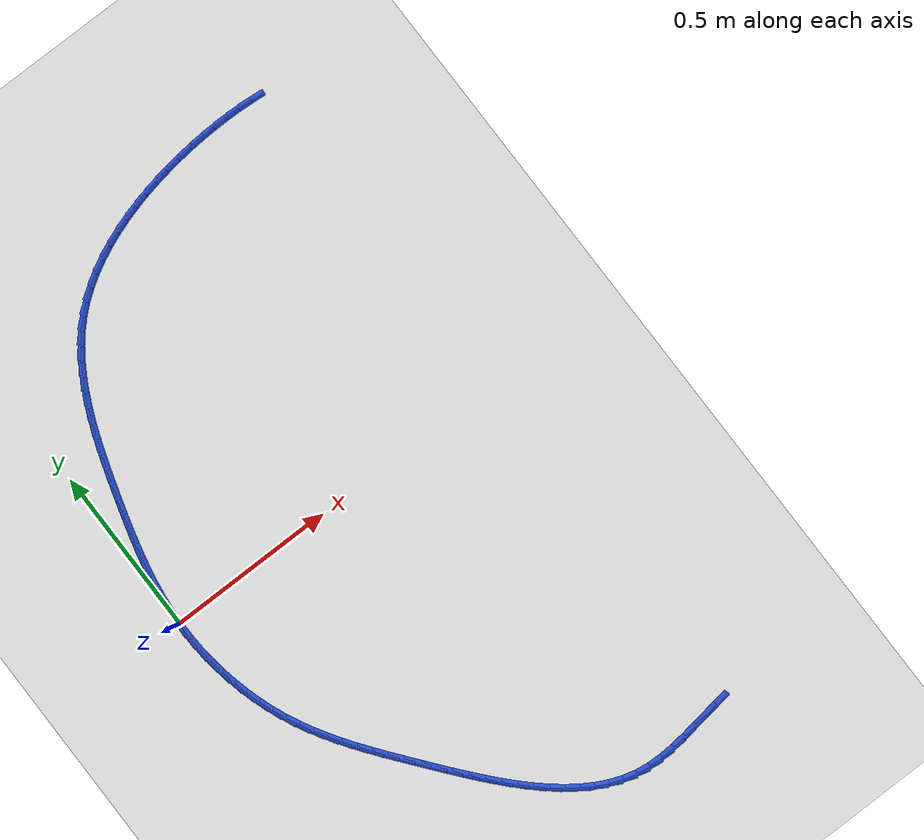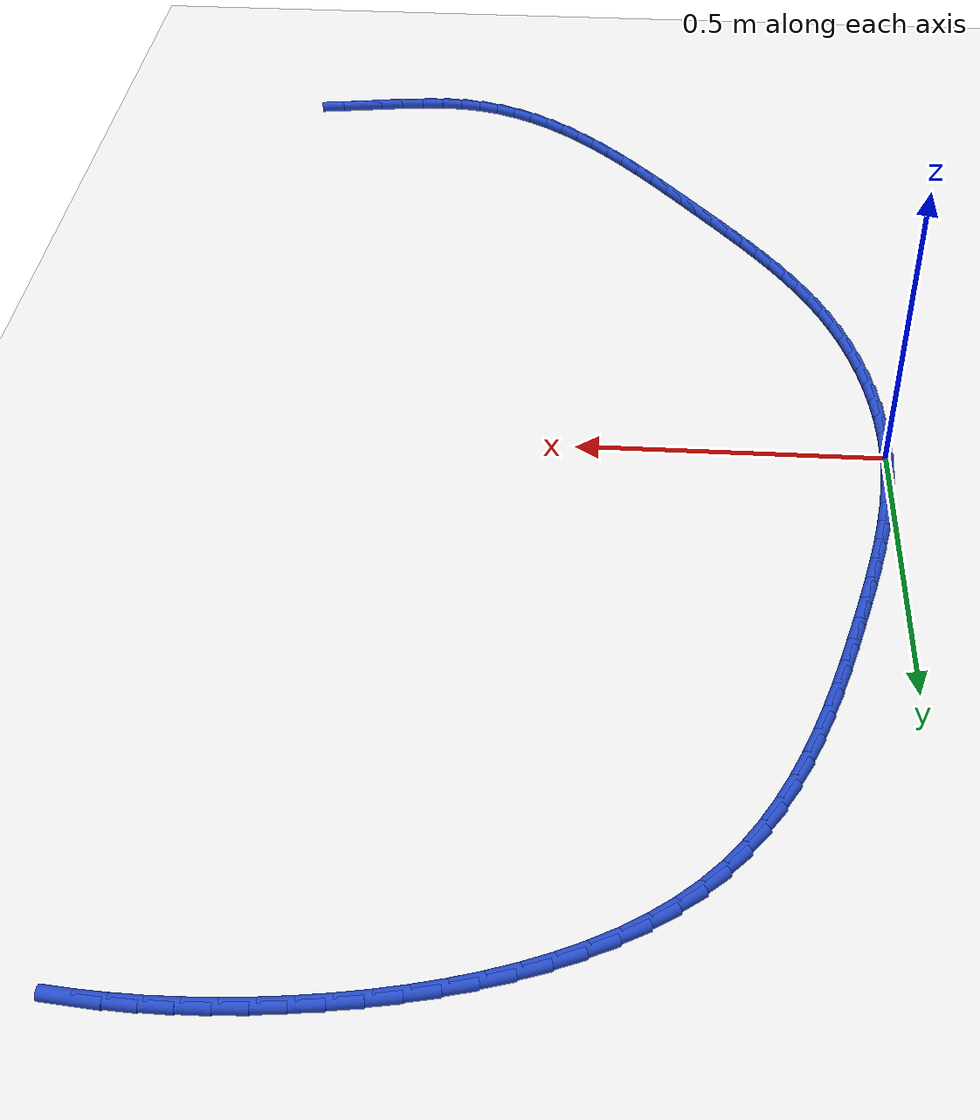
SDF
<sdf version="1.6">
 <world name="default">
  <model name="ground_plane">
   <static>1</static>
   <link name="link">
    <collision name="collision">
     <geometry><plane><normal>0 0 1</normal><size>100 100</size></plane></geometry>
     <surface><friction><ode><mu>100</mu><mu2>50</mu2></ode></friction></surface>
    </collision>
    <visual name="visual">
     <cast_shadows>0</cast_shadows>
     <geometry><plane><normal>0 0 1</normal><size>100 100</size></plane></geometry>
     <material>
      <script><uri>file://media/materials/scripts/gazebo.material</uri><name>Gazebo/WhiteGlow</name></script>
     </material>
    </visual>
   </link>
  </model>
  <model name="line">
   <link name="link_0">
    <pose>1.734723475976807e-18 -6.938893903907228e-17 0.01 0 1.57 1.5186807041762862</pose>
    <collision name="collision">
     <geometry><cylinder><radius>0.01</radius><length>0.08</length></cylinder></geometry>
    </collision>
    <visual name="visual">
     <material>
      <script><name>Gazebo/Blue</name><uri>file://media/materials/scripts/gazebo.material</uri></script>
     </material>
     <geometry><cylinder><radius>0.01</radius><length>0.08</length></cylinder></geometry>
    </visual>
   </link>
   <link name="link_1">
    <pose>0.0022255702728750694 0.042665805088439646 0.01 0 1.57 1.4713120042472065</pose>
    <collision name="collision">
     <geometry><cylinder><radius>0.01</radius><length>0.08</length></cylinder></geometry>
    </collision>
    <visual name="visual">
     <material>
      <script><name>Gazebo/Blue</name><uri>file://media/materials/scripts/gazebo.material</uri></script>
     </material>
     <geometry><cylinder><radius>0.01</radius><length>0.08</length></cylinder></geometry>
    </visual>
   </link>
   <link name="link_2">
    <pose>0.0064519726637163625 0.08500865860821659 0.01 0 1.57 1.428681906047522</pose>
    <collision name="collision">
     <geometry><cylinder><radius>0.01</radius><length>0.08</length></cylinder></geometry>
    </collision>
    <visual name="visual">
     <material>
      <script><name>Gazebo/Blue</name><uri>file://media/materials/scripts/gazebo.material</uri></script>
     </material>
     <geometry><cylinder><radius>0.01</radius><length>0.08</length></cylinder></geometry>
    </visual>
   </link>
   <link name="link_3">
    <pose>0.012474710428388141 0.12710246544149936 0.01 0 1.57 1.3911044565387365</pose>
    <collision name="collision">
     <geometry><cylinder><radius>0.01</radius><length>0.08</length></cylinder></geometry>
    </collision>
    <visual name="visual">
     <material>
      <script><name>Gazebo/Blue</name><uri>file://media/materials/scripts/gazebo.material</uri></script>
     </material>
     <geometry><cylinder><radius>0.01</radius><length>0.08</length></cylinder></geometry>
    </visual>
   </link>
   <link name="link_4">
    <pose>0.02008928682275461 0.16902113047045642 0.01 0 1.57 1.3587648407987145</pose>
    <collision name="collision">
     <geometry><cylinder><radius>0.01</radius><length>0.08</length></cylinder></geometry>
    </collision>
    <visual name="visual">
     <material>
      <script><name>Gazebo/Blue</name><uri>file://media/materials/scripts/gazebo.material</uri></script>
     </material>
     <geometry><cylinder><radius>0.01</radius><length>0.08</length></cylinder></geometry>
    </visual>
   </link>
   <link name="link_5">
    <pose>0.029091205102680016 0.2108385585772562 0.01 0 1.57 1.3317441301647523</pose>
    <collision name="collision">
     <geometry><cylinder><radius>0.01</radius><length>0.08</length></cylinder></geometry>
    </collision>
    <visual name="visual">
     <material>
      <script><name>Gazebo/Blue</name><uri>file://media/materials/scripts/gazebo.material</uri></script>
     </material>
     <geometry><cylinder><radius>0.01</radius><length>0.08</length></cylinder></geometry>
    </visual>
   </link>
   <link name="link_6">
    <pose>0.03927596852402861 0.2526286546440673 0.01 0 1.57 1.3100451679042042</pose>
    <collision name="collision">
     <geometry><cylinder><radius>0.01</radius><length>0.08</length></cylinder></geometry>
    </collision>
    <visual name="visual">
     <material>
      <script><name>Gazebo/Blue</name><uri>file://media/materials/scripts/gazebo.material</uri></script>
     </material>
     <geometry><cylinder><radius>0.01</radius><length>0.08</length></cylinder></geometry>
    </visual>
   </link>
   <link name="link_7">
    <pose>0.05043908034266459 0.29446532355305816 0.01 0 1.57 1.2936162458024942</pose>
    <collision name="collision">
     <geometry><cylinder><radius>0.01</radius><length>0.08</length></cylinder></geometry>
    </collision>
    <visual name="visual">
     <material>
      <script><name>Gazebo/Blue</name><uri>file://media/materials/scripts/gazebo.material</uri></script>
     </material>
     <geometry><cylinder><radius>0.01</radius><length>0.08</length></cylinder></geometry>
    </visual>
   </link>
   <link name="link_8">
    <pose>0.06237604381445222 0.33642247018639726 0.01 0 1.57 1.2823706779399318</pose>
    <collision name="collision">
     <geometry><cylinder><radius>0.01</radius><length>0.08</length></cylinder></geometry>
    </collision>
    <visual name="visual">
     <material>
      <script><name>Gazebo/Blue</name><uri>file://media/materials/scripts/gazebo.material</uri></script>
     </material>
     <geometry><cylinder><radius>0.01</radius><length>0.08</length></cylinder></geometry>
    </visual>
   </link>
   <link name="link_9">
    <pose>0.0748823621952557 0.378573999426253 0.01 0 1.57 1.274912087369015</pose>
    <collision name="collision">
     <geometry><cylinder><radius>0.01</radius><length>0.08</length></cylinder></geometry>
    </collision>
    <visual name="visual">
     <material>
      <script><name>Gazebo/Blue</name><uri>file://media/materials/scripts/gazebo.material</uri></script>
     </material>
     <geometry><cylinder><radius>0.01</radius><length>0.08</length></cylinder></geometry>
    </visual>
   </link>
   <link name="link_10">
    <pose>0.08780163753450884 0.42095557310188564 0.01 0 1.57 1.264254248498636</pose>
    <collision name="collision">
     <geometry><cylinder><radius>0.01</radius><length>0.08</length></cylinder></geometry>
    </collision>
    <visual name="visual">
     <material>
      <script><name>Gazebo/Blue</name><uri>file://media/materials/scripts/gazebo.material</uri></script>
     </material>
     <geometry><cylinder><radius>0.01</radius><length>0.08</length></cylinder></geometry>
    </visual>
   </link>
   <link name="link_11">
    <pose>0.10123539991750542 0.4633977760585001 0.01 0 1.57 1.2480336119488133</pose>
    <collision name="collision">
     <geometry><cylinder><radius>0.01</radius><length>0.08</length></cylinder></geometry>
    </collision>
    <visual name="visual">
     <material>
      <script><name>Gazebo/Blue</name><uri>file://media/materials/scripts/gazebo.material</uri></script>
     </material>
     <geometry><cylinder><radius>0.01</radius><length>0.08</length></cylinder></geometry>
    </visual>
   </link>
   <link name="link_12">
    <pose>0.11537127035748558 0.505662742777621 0.01 0 1.57 1.226092957649024</pose>
    <collision name="collision">
     <geometry><cylinder><radius>0.01</radius><length>0.08</length></cylinder></geometry>
    </collision>
    <visual name="visual">
     <material>
      <script><name>Gazebo/Blue</name><uri>file://media/materials/scripts/gazebo.material</uri></script>
     </material>
     <geometry><cylinder><radius>0.01</radius><length>0.08</length></cylinder></geometry>
    </visual>
   </link>
   <link name="link_13">
    <pose>0.13039692985673074 0.5475125600438586 0.01 0 1.57 1.1981736653455037</pose>
    <collision name="collision">
     <geometry><cylinder><radius>0.01</radius><length>0.08</length></cylinder></geometry>
    </collision>
    <visual name="visual">
     <material>
      <script><name>Gazebo/Blue</name><uri>file://media/materials/scripts/gazebo.material</uri></script>
     </material>
     <geometry><cylinder><radius>0.01</radius><length>0.08</length></cylinder></geometry>
    </visual>
   </link>
   <link name="link_14">
    <pose>0.14650005941752228 0.588709314641823 0.01 0 1.57 1.1639280657971418</pose>
    <collision name="collision">
     <geometry><cylinder><radius>0.01</radius><length>0.08</length></cylinder></geometry>
    </collision>
    <visual name="visual">
     <material>
      <script><name>Gazebo/Blue</name><uri>file://media/materials/scripts/gazebo.material</uri></script>
     </material>
     <geometry><cylinder><radius>0.01</radius><length>0.08</length></cylinder></geometry>
    </visual>
   </link>
   <link name="link_15">
    <pose>0.16386834004214154 0.6290150933561237 0.01 0 1.57 1.1229402111961178</pose>
    <collision name="collision">
     <geometry><cylinder><radius>0.01</radius><length>0.08</length></cylinder></geometry>
    </collision>
    <visual name="visual">
     <material>
      <script><name>Gazebo/Blue</name><uri>file://media/materials/scripts/gazebo.material</uri></script>
     </material>
     <geometry><cylinder><radius>0.01</radius><length>0.08</length></cylinder></geometry>
    </visual>
   </link>
   <link name="link_16">
    <pose>0.18268945273286996 0.6681919829713713 0.01 0 1.57 1.074758864009648</pose>
    <collision name="collision">
     <geometry><cylinder><radius>0.01</radius><length>0.08</length></cylinder></geometry>
    </collision>
    <visual name="visual">
     <material>
      <script><name>Gazebo/Blue</name><uri>file://media/materials/scripts/gazebo.material</uri></script>
     </material>
     <geometry><cylinder><radius>0.01</radius><length>0.08</length></cylinder></geometry>
    </visual>
   </link>
   <link name="link_17">
    <pose>0.20315107849198888 0.7060020702721752 0.01 0 1.57 1.0189492243153868</pose>
    <collision name="collision">
     <geometry><cylinder><radius>0.01</radius><length>0.08</length></cylinder></geometry>
    </collision>
    <visual name="visual">
     <material>
      <script><name>Gazebo/Blue</name><uri>file://media/materials/scripts/gazebo.material</uri></script>
     </material>
     <geometry><cylinder><radius>0.01</radius><length>0.08</length></cylinder></geometry>
    </visual>
   </link>
   <link name="link_18">
    <pose>0.2254408983217796 0.7422074420431457 0.01 0 1.57 0.9551698408678385</pose>
    <collision name="collision">
     <geometry><cylinder><radius>0.01</radius><length>0.08</length></cylinder></geometry>
    </collision>
    <visual name="visual">
     <material>
      <script><name>Gazebo/Blue</name><uri>file://media/materials/scripts/gazebo.material</uri></script>
     </material>
     <geometry><cylinder><radius>0.01</radius><length>0.08</length></cylinder></geometry>
    </visual>
   </link>
   <link name="link_19">
    <pose>0.24974659322452367 0.7765701850688925 0.01 0 1.57 0.8832780800777653</pose>
    <collision name="collision">
     <geometry><cylinder><radius>0.01</radius><length>0.08</length></cylinder></geometry>
    </collision>
    <visual name="visual">
     <material>
      <script><name>Gazebo/Blue</name><uri>file://media/materials/scripts/gazebo.material</uri></script>
     </material>
     <geometry><cylinder><radius>0.01</radius><length>0.08</length></cylinder></geometry>
    </visual>
   </link>
   <link name="link_20">
    <pose>0.2762558442025023 0.808852386134026 0.01 0 1.57 0.8034591398518491</pose>
    <collision name="collision">
     <geometry><cylinder><radius>0.01</radius><length>0.08</length></cylinder></geometry>
    </collision>
    <visual name="visual">
     <material>
      <script><name>Gazebo/Blue</name><uri>file://media/materials/scripts/gazebo.material</uri></script>
     </material>
     <geometry><cylinder><radius>0.01</radius><length>0.08</length></cylinder></geometry>
    </visual>
   </link>
   <link name="link_21">
    <pose>0.3051563304087328 0.8388161334906852 0.01 0 1.57 0.7186803359185121</pose>
    <collision name="collision">
     <geometry><cylinder><radius>0.01</radius><length>0.08</length></cylinder></geometry>
    </collision>
    <visual name="visual">
     <material>
      <script><name>Gazebo/Blue</name><uri>file://media/materials/scripts/gazebo.material</uri></script>
     </material>
     <geometry><cylinder><radius>0.01</radius><length>0.08</length></cylinder></geometry>
    </visual>
   </link>
   <link name="link_22">
    <pose>0.3365585413730784 0.8662847711374708 0.01 0 1.57 0.638207192442804</pose>
    <collision name="collision">
     <geometry><cylinder><radius>0.01</radius><length>0.08</length></cylinder></geometry>
    </collision>
    <visual name="visual">
     <material>
      <script><name>Gazebo/Blue</name><uri>file://media/materials/scripts/gazebo.material</uri></script>
     </material>
     <geometry><cylinder><radius>0.01</radius><length>0.08</length></cylinder></geometry>
    </visual>
   </link>
   <link name="link_23">
    <pose>0.3702904886991473 0.8913058104613497 0.01 0 1.57 0.5642304448531043</pose>
    <collision name="collision">
     <geometry><cylinder><radius>0.01</radius><length>0.08</length></cylinder></geometry>
    </collision>
    <visual name="visual">
     <material>
      <script><name>Gazebo/Blue</name><uri>file://media/materials/scripts/gazebo.material</uri></script>
     </material>
     <geometry><cylinder><radius>0.01</radius><length>0.08</length></cylinder></geometry>
    </visual>
   </link>
   <link name="link_24">
    <pose>0.4061155841111592 0.9139780276912653 0.01 0 1.57 0.4966540611262847</pose>
    <collision name="collision">
     <geometry><cylinder><radius>0.01</radius><length>0.08</length></cylinder></geometry>
    </collision>
    <visual name="visual">
     <material>
      <script><name>Gazebo/Blue</name><uri>file://media/materials/scripts/gazebo.material</uri></script>
     </material>
     <geometry><cylinder><radius>0.01</radius><length>0.08</length></cylinder></geometry>
    </visual>
   </link>
   <link name="link_25">
    <pose>0.4437972393333336 0.9344001990561615 0.01 0 1.57 0.435166565494479</pose>
    <collision name="collision">
     <geometry><cylinder><radius>0.01</radius><length>0.08</length></cylinder></geometry>
    </collision>
    <visual name="visual">
     <material>
      <script><name>Gazebo/Blue</name><uri>file://media/materials/scripts/gazebo.material</uri></script>
     </material>
     <geometry><cylinder><radius>0.01</radius><length>0.08</length></cylinder></geometry>
    </visual>
   </link>
   <link name="link_26">
    <pose>0.4830988660898901 0.9526711007849819 0.01 0 1.57 0.37932781316289005</pose>
    <collision name="collision">
     <geometry><cylinder><radius>0.01</radius><length>0.08</length></cylinder></geometry>
    </collision>
    <visual name="visual">
     <material>
      <script><name>Gazebo/Blue</name><uri>file://media/materials/scripts/gazebo.material</uri></script>
     </material>
     <geometry><cylinder><radius>0.01</radius><length>0.08</length></cylinder></geometry>
    </visual>
   </link>
   <link name="link_27">
    <pose>0.5237838761050482 0.9688895091066698 0.01 0 1.57 0.32863558943300447</pose>
    <collision name="collision">
     <geometry><cylinder><radius>0.01</radius><length>0.08</length></cylinder></geometry>
    </collision>
    <visual name="visual">
     <material>
      <script><name>Gazebo/Blue</name><uri>file://media/materials/scripts/gazebo.material</uri></script>
     </material>
     <geometry><cylinder><radius>0.01</radius><length>0.08</length></cylinder></geometry>
    </visual>
   </link>
   <link name="link_28">
    <pose>0.5656156811030278 0.9831542002501699 0.01 0 1.57 0.28257176241104004</pose>
    <collision name="collision">
     <geometry><cylinder><radius>0.01</radius><length>0.08</length></cylinder></geometry>
    </collision>
    <visual name="visual">
     <material>
      <script><name>Gazebo/Blue</name><uri>file://media/materials/scripts/gazebo.material</uri></script>
     </material>
     <geometry><cylinder><radius>0.01</radius><length>0.08</length></cylinder></geometry>
    </visual>
   </link>
   <link name="link_29">
    <pose>0.6083576928080481 0.9955639504444246 0.01 0 1.57 0.24063133174145582</pose>
    <collision name="collision">
     <geometry><cylinder><radius>0.01</radius><length>0.08</length></cylinder></geometry>
    </collision>
    <visual name="visual">
     <material>
      <script><name>Gazebo/Blue</name><uri>file://media/materials/scripts/gazebo.material</uri></script>
     </material>
     <geometry><cylinder><radius>0.01</radius><length>0.08</length></cylinder></geometry>
    </visual>
   </link>
   <link name="link_30">
    <pose>0.6517733229443284 1.0062175359183783 0.01 0 1.57 0.20233868571714028</pose>
    <collision name="collision">
     <geometry><cylinder><radius>0.01</radius><length>0.08</length></cylinder></geometry>
    </collision>
    <visual name="visual">
     <material>
      <script><name>Gazebo/Blue</name><uri>file://media/materials/scripts/gazebo.material</uri></script>
     </material>
     <geometry><cylinder><radius>0.01</radius><length>0.08</length></cylinder></geometry>
    </visual>
   </link>
   <link name="link_31">
    <pose>0.6956259832360889 1.0152137329009747 0.01 0 1.57 0.16725499663702917</pose>
    <collision name="collision">
     <geometry><cylinder><radius>0.01</radius><length>0.08</length></cylinder></geometry>
    </collision>
    <visual name="visual">
     <material>
      <script><name>Gazebo/Blue</name><uri>file://media/materials/scripts/gazebo.material</uri></script>
     </material>
     <geometry><cylinder><radius>0.01</radius><length>0.08</length></cylinder></geometry>
    </visual>
   </link>
   <link name="link_32">
    <pose>0.7396790854075489 1.0226513176211571 0.01 0 1.57 0.13497981500120357</pose>
    <collision name="collision">
     <geometry><cylinder><radius>0.01</radius><length>0.08</length></cylinder></geometry>
    </collision>
    <visual name="visual">
     <material>
      <script><name>Gazebo/Blue</name><uri>file://media/materials/scripts/gazebo.material</uri></script>
     </material>
     <geometry><cylinder><radius>0.01</radius><length>0.08</length></cylinder></geometry>
    </visual>
   </link>
   <link name="link_33">
    <pose>0.7836960411859901 1.0286290663064284 0.01 0 1.57 0.10464812955575604</pose>
    <collision name="collision">
     <geometry><cylinder><radius>0.01</radius><length>0.08</length></cylinder></geometry>
    </collision>
    <visual name="visual">
     <material>
      <script><name>Gazebo/Blue</name><uri>file://media/materials/scripts/gazebo.material</uri></script>
     </material>
     <geometry><cylinder><radius>0.01</radius><length>0.08</length></cylinder></geometry>
    </visual>
   </link>
   <link name="link_34">
    <pose>0.8274787454387937 1.0332276433751173 0.01 0 1.57 0.0740799324541237</pose>
    <collision name="collision">
     <geometry><cylinder><radius>0.01</radius><length>0.08</length></cylinder></geometry>
    </collision>
    <visual name="visual">
     <material>
      <script><name>Gazebo/Blue</name><uri>file://media/materials/scripts/gazebo.material</uri></script>
     </material>
     <geometry><cylinder><radius>0.01</radius><length>0.08</length></cylinder></geometry>
    </visual>
   </link>
   <link name="link_35">
    <pose>0.8709810436834522 1.036456198780478 0.01 0 1.57 0.04278564622942004</pose>
    <collision name="collision">
     <geometry><cylinder><radius>0.01</radius><length>0.08</length></cylinder></geometry>
    </collision>
    <visual name="visual">
     <material>
      <script><name>Gazebo/Blue</name><uri>file://media/materials/scripts/gazebo.material</uri></script>
     </material>
     <geometry><cylinder><radius>0.01</radius><length>0.08</length></cylinder></geometry>
    </visual>
   </link>
   <link name="link_36">
    <pose>0.9141942799853213 1.038306234057746 0.01 0 1.57 0.010788608343496257</pose>
    <collision name="collision">
     <geometry><cylinder><radius>0.01</radius><length>0.08</length></cylinder></geometry>
    </collision>
    <visual name="visual">
     <material>
      <script><name>Gazebo/Blue</name><uri>file://media/materials/scripts/gazebo.material</uri></script>
     </material>
     <geometry><cylinder><radius>0.01</radius><length>0.08</length></cylinder></geometry>
    </visual>
   </link>
   <link name="link_37">
    <pose>0.9571097984097561 1.0387692507421569 0.01 0 1.57 -0.021881489290993806</pose>
    <collision name="collision">
     <geometry><cylinder><radius>0.01</radius><length>0.08</length></cylinder></geometry>
    </collision>
    <visual name="visual">
     <material>
      <script><name>Gazebo/Blue</name><uri>file://media/materials/scripts/gazebo.material</uri></script>
     </material>
     <geometry><cylinder><radius>0.01</radius><length>0.08</length></cylinder></geometry>
    </visual>
   </link>
   <link name="link_38">
    <pose>0.9997189430221121 1.0378367503689454 0.01 0 1.57 -0.05518837002799684</pose>
    <collision name="collision">
     <geometry><cylinder><radius>0.01</radius><length>0.08</length></cylinder></geometry>
    </collision>
    <visual name="visual">
     <material>
      <script><name>Gazebo/Blue</name><uri>file://media/materials/scripts/gazebo.material</uri></script>
     </material>
     <geometry><cylinder><radius>0.01</radius><length>0.08</length></cylinder></geometry>
    </visual>
   </link>
   <link name="link_39">
    <pose>1.0420130578877438 1.0355002344733468 0.01 0 1.57 -0.08908906089191951</pose>
    <collision name="collision">
     <geometry><cylinder><radius>0.01</radius><length>0.08</length></cylinder></geometry>
    </collision>
    <visual name="visual">
     <material>
      <script><name>Gazebo/Blue</name><uri>file://media/materials/scripts/gazebo.material</uri></script>
     </material>
     <geometry><cylinder><radius>0.01</radius><length>0.08</length></cylinder></geometry>
    </visual>
   </link>
   <link name="link_121">
    <pose>1.0442301385088901 -1.0740103132481915 0.01 0 1.57 0.13664495615910116</pose>
    <collision name="collision">
     <geometry><cylinder><radius>0.01</radius><length>0.08</length></cylinder></geometry>
    </collision>
    <visual name="visual">
     <material>
      <script><name>Gazebo/Blue</name><uri>file://media/materials/scripts/gazebo.material</uri></script>
     </material>
     <geometry><cylinder><radius>0.01</radius><length>0.08</length></cylinder></geometry>
    </visual>
   </link>
   <link name="link_122">
    <pose>1.0002789992647705 -1.080053675218481 0.01 0 1.57 0.14753317353246576</pose>
    <collision name="collision">
     <geometry><cylinder><radius>0.01</radius><length>0.08</length></cylinder></geometry>
    </collision>
    <visual name="visual">
     <material>
      <script><name>Gazebo/Blue</name><uri>file://media/materials/scripts/gazebo.material</uri></script>
     </material>
     <geometry><cylinder><radius>0.01</radius><length>0.08</length></cylinder></geometry>
    </visual>
   </link>
   <link name="link_123">
    <pose>0.9566887204710506 -1.08653175644626 0.01 0 1.57 0.1371932308248056</pose>
    <collision name="collision">
     <geometry><cylinder><radius>0.01</radius><length>0.08</length></cylinder></geometry>
    </collision>
    <visual name="visual">
     <material>
      <script><name>Gazebo/Blue</name><uri>file://media/materials/scripts/gazebo.material</uri></script>
     </material>
     <geometry><cylinder><radius>0.01</radius><length>0.08</length></cylinder></geometry>
    </visual>
   </link>
   <link name="link_124">
    <pose>0.9135962763031522 -1.092481121287357 0.01 0 1.57 0.10459711445972131</pose>
    <collision name="collision">
     <geometry><cylinder><radius>0.01</radius><length>0.08</length></cylinder></geometry>
    </collision>
    <visual name="visual">
     <material>
      <script><name>Gazebo/Blue</name><uri>file://media/materials/scripts/gazebo.material</uri></script>
     </material>
     <geometry><cylinder><radius>0.01</radius><length>0.08</length></cylinder></geometry>
    </visual>
   </link>
   <link name="link_125">
    <pose>0.8711386409364981 -1.0969383340976027 0.01 0 1.57 0.04798004154359459</pose>
    <collision name="collision">
     <geometry><cylinder><radius>0.01</radius><length>0.08</length></cylinder></geometry>
    </collision>
    <visual name="visual">
     <material>
      <script><name>Gazebo/Blue</name><uri>file://media/materials/scripts/gazebo.material</uri></script>
     </material>
     <geometry><cylinder><radius>0.01</radius><length>0.08</length></cylinder></geometry>
    </visual>
   </link>
   <link name="link_126">
    <pose>0.8294527885465092 -1.0989399592328255 0.01 0 1.57 -0.03474567620526444</pose>
    <collision name="collision">
     <geometry><cylinder><radius>0.01</radius><length>0.08</length></cylinder></geometry>
    </collision>
    <visual name="visual">
     <material>
      <script><name>Gazebo/Blue</name><uri>file://media/materials/scripts/gazebo.material</uri></script>
     </material>
     <geometry><cylinder><radius>0.01</radius><length>0.08</length></cylinder></geometry>
    </visual>
   </link>
   <link name="link_127">
    <pose>0.7886756933086096 -1.0975225610488564 0.01 0 1.57 -0.14401223394895601</pose>
    <collision name="collision">
     <geometry><cylinder><radius>0.01</radius><length>0.08</length></cylinder></geometry>
    </collision>
    <visual name="visual">
     <material>
      <script><name>Gazebo/Blue</name><uri>file://media/materials/scripts/gazebo.material</uri></script>
     </material>
     <geometry><cylinder><radius>0.01</radius><length>0.08</length></cylinder></geometry>
    </visual>
   </link>
   <link name="link_128">
    <pose>0.7489393434487183 -1.0917601487865551 0.01 0 1.57 -0.261575184031773</pose>
    <collision name="collision">
     <geometry><cylinder><radius>0.01</radius><length>0.08</length></cylinder></geometry>
    </collision>
    <visual name="visual">
     <material>
      <script><name>Gazebo/Blue</name><uri>file://media/materials/scripts/gazebo.material</uri></script>
     </material>
     <geometry><cylinder><radius>0.01</radius><length>0.08</length></cylinder></geometry>
    </visual>
   </link>
   <link name="link_129">
    <pose>0.710284493875574 -1.08141190129617 0.01 0 1.57 -0.36969455181703137</pose>
    <collision name="collision">
     <geometry><cylinder><radius>0.01</radius><length>0.08</length></cylinder></geometry>
    </collision>
    <visual name="visual">
     <material>
      <script><name>Gazebo/Blue</name><uri>file://media/materials/scripts/gazebo.material</uri></script>
     </material>
     <geometry><cylinder><radius>0.01</radius><length>0.08</length></cylinder></geometry>
    </visual>
   </link>
   <link name="link_130">
    <pose>0.672672054852017 -1.06683663719259 0.01 0 1.57 -0.46620768532369017</pose>
    <collision name="collision">
     <geometry><cylinder><radius>0.01</radius><length>0.08</length></cylinder></geometry>
    </collision>
    <visual name="visual">
     <material>
      <script><name>Gazebo/Blue</name><uri>file://media/materials/scripts/gazebo.material</uri></script>
     </material>
     <geometry><cylinder><radius>0.01</radius><length>0.08</length></cylinder></geometry>
    </visual>
   </link>
   <link name="link_131">
    <pose>0.6360602411276303 -1.0484134186138188 0.01 0 1.57 -0.5506742085811799</pose>
    <collision name="collision">
     <geometry><cylinder><radius>0.01</radius><length>0.08</length></cylinder></geometry>
    </collision>
    <visual name="visual">
     <material>
      <script><name>Gazebo/Blue</name><uri>file://media/materials/scripts/gazebo.material</uri></script>
     </material>
     <geometry><cylinder><radius>0.01</radius><length>0.08</length></cylinder></geometry>
    </visual>
   </link>
   <link name="link_132">
    <pose>0.6004072674519982 -1.0265213076978605 0.01 0 1.57 -0.6234934829953608</pose>
    <collision name="collision">
     <geometry><cylinder><radius>0.01</radius><length>0.08</length></cylinder></geometry>
    </collision>
    <visual name="visual">
     <material>
      <script><name>Gazebo/Blue</name><uri>file://media/materials/scripts/gazebo.material</uri></script>
     </material>
     <geometry><cylinder><radius>0.01</radius><length>0.08</length></cylinder></geometry>
    </visual>
   </link>
   <link name="link_133">
    <pose>0.5656713485747035 -1.001539366582718 0.01 0 1.57 -0.6855267721032117</pose>
    <collision name="collision">
     <geometry><cylinder><radius>0.01</radius><length>0.08</length></cylinder></geometry>
    </collision>
    <visual name="visual">
     <material>
      <script><name>Gazebo/Blue</name><uri>file://media/materials/scripts/gazebo.material</uri></script>
     </material>
     <geometry><cylinder><radius>0.01</radius><length>0.08</length></cylinder></geometry>
    </visual>
   </link>
   <link name="link_134">
    <pose>0.53181069924533 -0.9738466574063958 0.01 0 1.57 -0.7378104120051842</pose>
    <collision name="collision">
     <geometry><cylinder><radius>0.01</radius><length>0.08</length></cylinder></geometry>
    </collision>
    <visual name="visual">
     <material>
      <script><name>Gazebo/Blue</name><uri>file://media/materials/scripts/gazebo.material</uri></script>
     </material>
     <geometry><cylinder><radius>0.01</radius><length>0.08</length></cylinder></geometry>
    </visual>
   </link>
   <link name="link_135">
    <pose>0.4987835342134609 -0.9438222423068967 0.01 0 1.57 -0.7813739375051022</pose>
    <collision name="collision">
     <geometry><cylinder><radius>0.01</radius><length>0.08</length></cylinder></geometry>
    </collision>
    <visual name="visual">
     <material>
      <script><name>Gazebo/Blue</name><uri>file://media/materials/scripts/gazebo.material</uri></script>
     </material>
     <geometry><cylinder><radius>0.01</radius><length>0.08</length></cylinder></geometry>
    </visual>
   </link>
   <link name="link_136">
    <pose>0.46654806822867906 -0.9118451834222244 0.01 0 1.57 -0.8171404077856751</pose>
    <collision name="collision">
     <geometry><cylinder><radius>0.01</radius><length>0.08</length></cylinder></geometry>
    </collision>
    <visual name="visual">
     <material>
      <script><name>Gazebo/Blue</name><uri>file://media/materials/scripts/gazebo.material</uri></script>
     </material>
     <geometry><cylinder><radius>0.01</radius><length>0.08</length></cylinder></geometry>
    </visual>
   </link>
   <link name="link_137">
    <pose>0.43506251604056917 -0.8782945428903836 0.01 0 1.57 -0.8458795578137094</pose>
    <collision name="collision">
     <geometry><cylinder><radius>0.01</radius><length>0.08</length></cylinder></geometry>
    </collision>
    <visual name="visual">
     <material>
      <script><name>Gazebo/Blue</name><uri>file://media/materials/scripts/gazebo.material</uri></script>
     </material>
     <geometry><cylinder><radius>0.01</radius><length>0.08</length></cylinder></geometry>
    </visual>
   </link>
   <link name="link_138">
    <pose>0.40428509239871385 -0.8435493828493766 0.01 0 1.57 -0.8681899945417589</pose>
    <collision name="collision">
     <geometry><cylinder><radius>0.01</radius><length>0.08</length></cylinder></geometry>
    </collision>
    <visual name="visual">
     <material>
      <script><name>Gazebo/Blue</name><uri>file://media/materials/scripts/gazebo.material</uri></script>
     </material>
     <geometry><cylinder><radius>0.01</radius><length>0.08</length></cylinder></geometry>
    </visual>
   </link>
   <link name="link_139">
    <pose>0.3741740120526969 -0.8079887654372083 0.01 0 1.57 -0.8844942993103678</pose>
    <collision name="collision">
     <geometry><cylinder><radius>0.01</radius><length>0.08</length></cylinder></geometry>
    </collision>
    <visual name="visual">
     <material>
      <script><name>Gazebo/Blue</name><uri>file://media/materials/scripts/gazebo.material</uri></script>
     </material>
     <geometry><cylinder><radius>0.01</radius><length>0.08</length></cylinder></geometry>
    </visual>
   </link>
   <link name="link_140">
    <pose>0.34468748975210156 -0.7719917527918816 0.01 0 1.57 -0.8950368716250122</pose>
    <collision name="collision">
     <geometry><cylinder><radius>0.01</radius><length>0.08</length></cylinder></geometry>
    </collision>
    <visual name="visual">
     <material>
      <script><name>Gazebo/Blue</name><uri>file://media/materials/scripts/gazebo.material</uri></script>
     </material>
     <geometry><cylinder><radius>0.01</radius><length>0.08</length></cylinder></geometry>
    </visual>
   </link>
   <link name="link_141">
    <pose>0.3157837402465108 -0.7359374070513995 0.01 0 1.57 -0.8998919429733387</pose>
    <collision name="collision">
     <geometry><cylinder><radius>0.01</radius><length>0.08</length></cylinder></geometry>
    </collision>
    <visual name="visual">
     <material>
      <script><name>Gazebo/Blue</name><uri>file://media/materials/scripts/gazebo.material</uri></script>
     </material>
     <geometry><cylinder><radius>0.01</radius><length>0.08</length></cylinder></geometry>
    </visual>
   </link>
   <link name="link_142">
    <pose>0.28742121287524364 -0.7002040656559898 0.01 0 1.57 -0.902148845882471</pose>
    <collision name="collision">
     <geometry><cylinder><radius>0.01</radius><length>0.08</length></cylinder></geometry>
    </collision>
    <visual name="visual">
     <material>
      <script><name>Gazebo/Blue</name><uri>file://media/materials/scripts/gazebo.material</uri></script>
     </material>
     <geometry><cylinder><radius>0.01</radius><length>0.08</length></cylinder></geometry>
    </visual>
   </link>
   <link name="link_143">
    <pose>0.2596118546049073 -0.665004800452814 0.01 0 1.57 -0.9091179450929171</pose>
    <collision name="collision">
     <geometry><cylinder><radius>0.01</radius><length>0.08</length></cylinder></geometry>
    </collision>
    <visual name="visual">
     <material>
      <script><name>Gazebo/Blue</name><uri>file://media/materials/scripts/gazebo.material</uri></script>
     </material>
     <geometry><cylinder><radius>0.01</radius><length>0.08</length></cylinder></geometry>
    </visual>
   </link>
   <link name="link_144">
    <pose>0.2324888766439813 -0.6301780721545682 0.01 0 1.57 -0.9220330322765752</pose>
    <collision name="collision">
     <geometry><cylinder><radius>0.01</radius><length>0.08</length></cylinder></geometry>
    </collision>
    <visual name="visual">
     <material>
      <script><name>Gazebo/Blue</name><uri>file://media/materials/scripts/gazebo.material</uri></script>
     </material>
     <geometry><cylinder><radius>0.01</radius><length>0.08</length></cylinder></geometry>
    </visual>
   </link>
   <link name="link_145">
    <pose>0.2062021972425294 -0.5955107298553476 0.01 0 1.57 -0.941082364895076</pose>
    <collision name="collision">
     <geometry><cylinder><radius>0.01</radius><length>0.08</length></cylinder></geometry>
    </collision>
    <visual name="visual">
     <material>
      <script><name>Gazebo/Blue</name><uri>file://media/materials/scripts/gazebo.material</uri></script>
     </material>
     <geometry><cylinder><radius>0.01</radius><length>0.08</length></cylinder></geometry>
    </visual>
   </link>
   <link name="link_146">
    <pose>0.18090173465061482 -0.5607896226492465 0.01 0 1.57 -0.9663760463414354</pose>
    <collision name="collision">
     <geometry><cylinder><radius>0.01</radius><length>0.08</length></cylinder></geometry>
    </collision>
    <visual name="visual">
     <material>
      <script><name>Gazebo/Blue</name><uri>file://media/materials/scripts/gazebo.material</uri></script>
     </material>
     <geometry><cylinder><radius>0.01</radius><length>0.08</length></cylinder></geometry>
    </visual>
   </link>
   <link name="link_147">
    <pose>0.15673740711830209 -0.5258015996303612 0.01 0 1.57 -0.9979170735801378</pose>
    <collision name="collision">
     <geometry><cylinder><radius>0.01</radius><length>0.08</length></cylinder></geometry>
    </collision>
    <visual name="visual">
     <material>
      <script><name>Gazebo/Blue</name><uri>file://media/materials/scripts/gazebo.material</uri></script>
     </material>
     <geometry><cylinder><radius>0.01</radius><length>0.08</length></cylinder></geometry>
    </visual>
   </link>
   <link name="link_148">
    <pose>0.13385913289565446 -0.4903335098927858 0.01 0 1.57 -1.0355674578785092</pose>
    <collision name="collision">
     <geometry><cylinder><radius>0.01</radius><length>0.08</length></cylinder></geometry>
    </collision>
    <visual name="visual">
     <material>
      <script><name>Gazebo/Blue</name><uri>file://media/materials/scripts/gazebo.material</uri></script>
     </material>
     <geometry><cylinder><radius>0.01</radius><length>0.08</length></cylinder></geometry>
    </visual>
   </link>
   <link name="link_149">
    <pose>0.11241683023273556 -0.45417220253061563 0.01 0 1.57 -1.0790137865831648</pose>
    <collision name="collision">
     <geometry><cylinder><radius>0.01</radius><length>0.08</length></cylinder></geometry>
    </collision>
    <visual name="visual">
     <material>
      <script><name>Gazebo/Blue</name><uri>file://media/materials/scripts/gazebo.material</uri></script>
     </material>
     <geometry><cylinder><radius>0.01</radius><length>0.08</length></cylinder></geometry>
    </visual>
   </link>
   <link name="link_150">
    <pose>0.09256041737960917 -0.4171045266379459 0.01 0 1.57 -1.127738347496942</pose>
    <collision name="collision">
     <geometry><cylinder><radius>0.01</radius><length>0.08</length></cylinder></geometry>
    </collision>
    <visual name="visual">
     <material>
      <script><name>Gazebo/Blue</name><uri>file://media/materials/scripts/gazebo.material</uri></script>
     </material>
     <geometry><cylinder><radius>0.01</radius><length>0.08</length></cylinder></geometry>
    </visual>
   </link>
   <link name="link_151">
    <pose>0.07443979527316387 -0.3789173926459768 0.01 0 1.57 -1.179686052060461</pose>
    <collision name="collision">
     <geometry><cylinder><radius>0.01</radius><length>0.08</length></cylinder></geometry>
    </collision>
    <visual name="visual">
     <material>
      <script><name>Gazebo/Blue</name><uri>file://media/materials/scripts/gazebo.material</uri></script>
     </material>
     <geometry><cylinder><radius>0.01</radius><length>0.08</length></cylinder></geometry>
    </visual>
   </link>
   <link name="link_152">
    <pose>0.05818001852432369 -0.33948573653702496 0.01 0 1.57 -1.2306055662219726</pose>
    <collision name="collision">
     <geometry><cylinder><radius>0.01</radius><length>0.08</length></cylinder></geometry>
    </collision>
    <visual name="visual">
     <material>
      <script><name>Gazebo/Blue</name><uri>file://media/materials/scripts/gazebo.material</uri></script>
     </material>
     <geometry><cylinder><radius>0.01</radius><length>0.08</length></cylinder></geometry>
    </visual>
   </link>
   <link name="link_153">
    <pose>0.04383170226231981 -0.2989482184516362 0.01 0 1.57 -1.2801483729292142</pose>
    <collision name="collision">
     <geometry><cylinder><radius>0.01</radius><length>0.08</length></cylinder></geometry>
    </collision>
    <visual name="visual">
     <material>
      <script><name>Gazebo/Blue</name><uri>file://media/materials/scripts/gazebo.material</uri></script>
     </material>
     <geometry><cylinder><radius>0.01</radius><length>0.08</length></cylinder></geometry>
    </visual>
   </link>
   <link name="link_154">
    <pose>0.03143158003406054 -0.25749267819321947 0.01 0 1.57 -1.3287477158333632</pose>
    <collision name="collision">
     <geometry><cylinder><radius>0.01</radius><length>0.08</length></cylinder></geometry>
    </collision>
    <visual name="visual">
     <material>
      <script><name>Gazebo/Blue</name><uri>file://media/materials/scripts/gazebo.material</uri></script>
     </material>
     <geometry><cylinder><radius>0.01</radius><length>0.08</length></cylinder></geometry>
    </visual>
   </link>
   <link name="link_155">
    <pose>0.02101638538645402 -0.21530695556518284 0.01 0 1.57 -1.376825445608914</pose>
    <collision name="collision">
     <geometry><cylinder><radius>0.01</radius><length>0.08</length></cylinder></geometry>
    </collision>
    <visual name="visual">
     <material>
      <script><name>Gazebo/Blue</name><uri>file://media/materials/scripts/gazebo.material</uri></script>
     </material>
     <geometry><cylinder><radius>0.01</radius><length>0.08</length></cylinder></geometry>
    </visual>
   </link>
   <link name="link_156">
    <pose>0.012622851866408328 -0.17257889037093418 0.01 0 1.57 -1.4247961768293147</pose>
    <collision name="collision">
     <geometry><cylinder><radius>0.01</radius><length>0.08</length></cylinder></geometry>
    </collision>
    <visual name="visual">
     <material>
      <script><name>Gazebo/Blue</name><uri>file://media/materials/scripts/gazebo.material</uri></script>
     </material>
     <geometry><cylinder><radius>0.01</radius><length>0.08</length></cylinder></geometry>
    </visual>
   </link>
   <link name="link_157">
    <pose>0.006287713020831986 -0.12949632241388362 0.01 0 1.57 -1.4730719398550476</pose>
    <collision name="collision">
     <geometry><cylinder><radius>0.01</radius><length>0.08</length></cylinder></geometry>
    </collision>
    <visual name="visual">
     <material>
      <script><name>Gazebo/Blue</name><uri>file://media/materials/scripts/gazebo.material</uri></script>
     </material>
     <geometry><cylinder><radius>0.01</radius><length>0.08</length></cylinder></geometry>
    </visual>
   </link>
   <link name="link_158">
    <pose>0.00204770239663302 -0.08624709149743878 0.01 0 1.57 -1.522066861766159</pose>
    <collision name="collision">
     <geometry><cylinder><radius>0.01</radius><length>0.08</length></cylinder></geometry>
    </collision>
    <visual name="visual">
     <material>
      <script><name>Gazebo/Blue</name><uri>file://media/materials/scripts/gazebo.material</uri></script>
     </material>
     <geometry><cylinder><radius>0.01</radius><length>0.08</length></cylinder></geometry>
    </visual>
   </link>
   <link name="link_159">
    <pose>-6.0446459280378076e-05 -0.043019037425008184 0.01 0 1.57 1.569391218193726</pose>
    <collision name="collision">
     <geometry><cylinder><radius>0.01</radius><length>0.08</length></cylinder></geometry>
    </collision>
    <visual name="visual">
     <material>
      <script><name>Gazebo/Blue</name><uri>file://media/materials/scripts/gazebo.material</uri></script>
     </material>
     <geometry><cylinder><radius>0.01</radius><length>0.08</length></cylinder></geometry>
    </visual>
   </link>
   <link name="link_160">
    <pose>1.0408340855860843e-17 -3.0531133177191805e-16 0.01 0 1.57 1.5176867822086</pose>
    <collision name="collision">
     <geometry><cylinder><radius>0.01</radius><length>0.08</length></cylinder></geometry>
    </collision>
    <visual name="visual">
     <material>
      <script><name>Gazebo/Blue</name><uri>file://media/materials/scripts/gazebo.material</uri></script>
     </material>
     <geometry><cylinder><radius>0.01</radius><length>0.08</length></cylinder></geometry>
    </visual>
   </link>
   <link name="link_161">
    <pose>0.0022657753213824357 0.04262218097417714 0.01 0 1.57 1.5176867822085995</pose>
    <collision name="collision">
     <geometry><cylinder><radius>0.01</radius><length>0.08</length></cylinder></geometry>
    </collision>
    <visual name="visual">
     <material>
      <script><name>Gazebo/Blue</name><uri>file://media/materials/scripts/gazebo.material</uri></script>
     </material>
     <geometry><cylinder><radius>0.01</radius><length>0.08</length></cylinder></geometry>
    </visual>
   </link>
  </model>
 </world>
</sdf>
